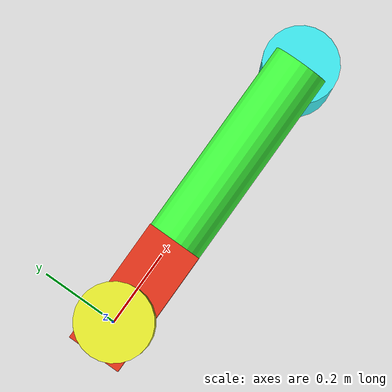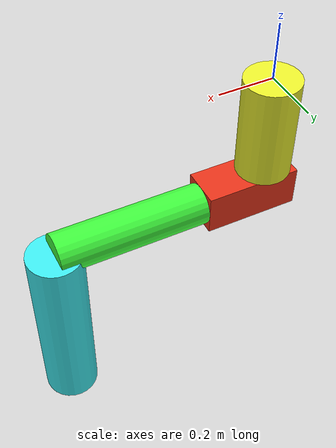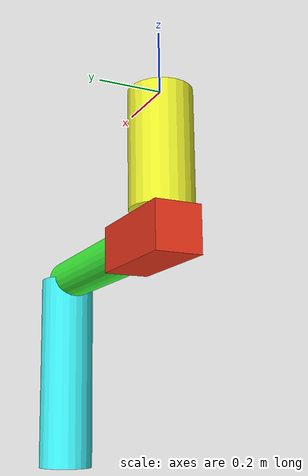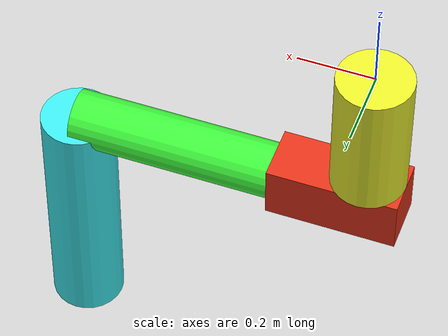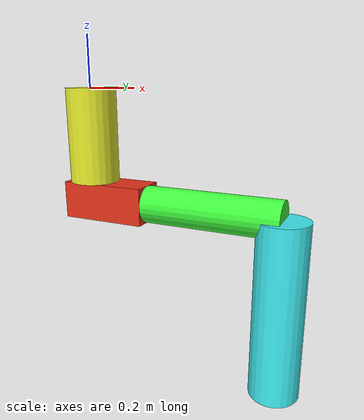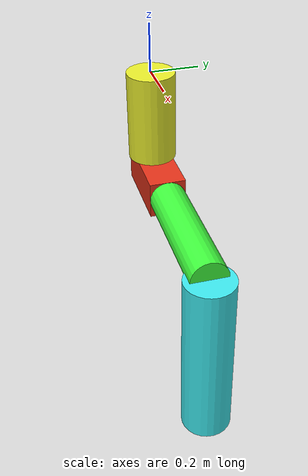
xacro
<?xml version="1.0"?>
<robot name="leg" xmlns:xacro="http://www.ros.org/wiki/xacro">

    <xacro:include filename="$(find Arm_Kinematics)/urdf/leg.description.xacro"/>
    <xacro:include filename="$(find Arm_Kinematics)/urdf/leg.ros2_control.xacro"/>

    <xacro:leg_description/>
    <xacro:leg_ros2_control name="leg_ros2_control" />

</robot>

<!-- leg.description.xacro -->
<robot xmlns:xacro="http://www.ros.org/wiki/xacro">

  <xacro:macro name="leg_description">
      <!-- materials for color reference -->
    <material name="orange">
      <color rgba="0.9 0.2 0.1 1"/>
    </material>

    <material name="light_green">
      <color rgba="0.251 1 0.239 1"/>
    </material>

    <material name="yellow">
      <color rgba="0.9176 0.9372 0.17254902 1"/>
    </material>

    <material name="light_blue">
      <color rgba="0.239 0.92 0.94 1"/>
    </material>

    <!-- base link, pi = 1.57079632679 -->
    <link name="base_link">
      <visual>
          <geometry>
              <cylinder length="0.375" radius="0.1"/>
          </geometry>
          <origin xyz="0 0 -0.1875" rpy="0 0 0"/>
          <material name="yellow"/>
      </visual>
    </link>

    <!-- box and cylinders -->
    <link name="coxa">
      <visual>
          <geometry>
              <box size="0.35 0.15 0.15"/>
          </geometry>
          <origin xyz="0.075 0 0" rpy="0 0 0"/>
          <material name="orange"/>
      </visual>
    </link>

    <link name="femur">
      <visual>
          <geometry>
              <cylinder length="0.55" radius="0.075"/>
          </geometry>
          <origin xyz="0.275 0 0" rpy="0 1.57079632679 0"/>
          <material name="light_green"/>
      </visual>
    </link>

    <link name="tibia">
      <visual>
          <geometry>
              <cylinder length="0.7149" radius="0.1"/>
          </geometry>
          <origin xyz="0 0 -0.35745" rpy="0 0 0"/>
          <material name="light_blue"/>
      </visual>
    </link>

    <!-- joint between coxa, femur, and tibia -->
    <joint name="Base_Coxa" type="revolute">
      <parent link="base_link"/>
      <child link="coxa"/>
      <axis xyz="0 0 1"/>
      <origin xyz="0 0 -0.45"/>
      <limit effort="1000.0" lower="-1.57079632679" upper="1.57079632679" velocity="0.5"/>
    </joint>

    <joint name="Coxa_Femur" type="revolute">
      <parent link="coxa"/>
      <child link="femur"/>
      <axis xyz="0 -1 0"/>
      <origin xyz="0.25 0 0"/>
      <limit effort="1000.0" lower="-1.57079632679" upper="1.57079632679" velocity="0.5"/>
    </joint>

    <joint name="Femur_Tibia" type="revolute">
      <parent link="femur"/>
      <child link="tibia"/>
      <axis xyz="0 -1 0"/>
      <origin xyz="0.55 0 0"/>
      <limit effort="1000.0" lower="-1.57079632679" upper="1.57079632679" velocity="0.5"/>
    </joint>

    <!-- additional fixed joint at the end of tibia for leg's final position -->
    <link name="end_effector"/>
      <joint name="foot" type="fixed">
        <parent link="tibia"/>
        <child link="end_effector"/>
        <origin xyz="0 0 -0.7149"/>
      </joint>

  </xacro:macro>

</robot>
